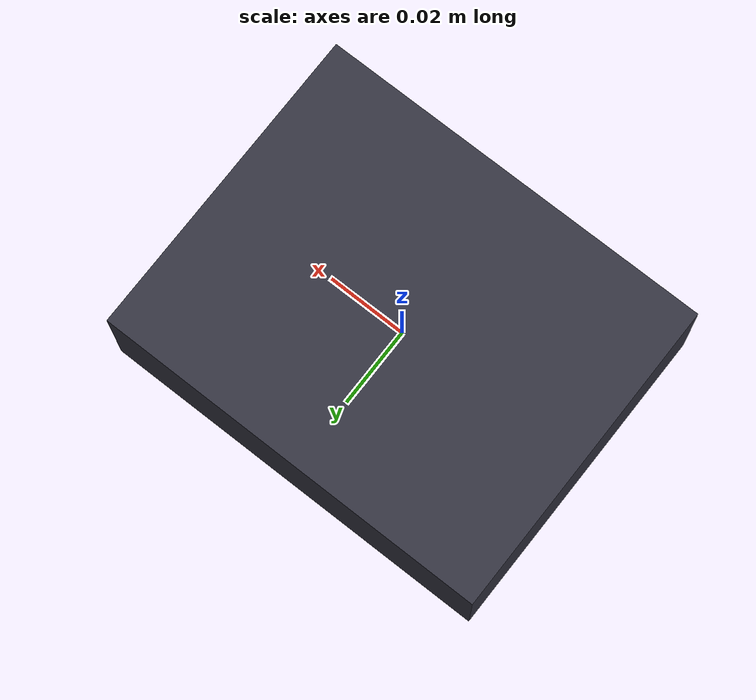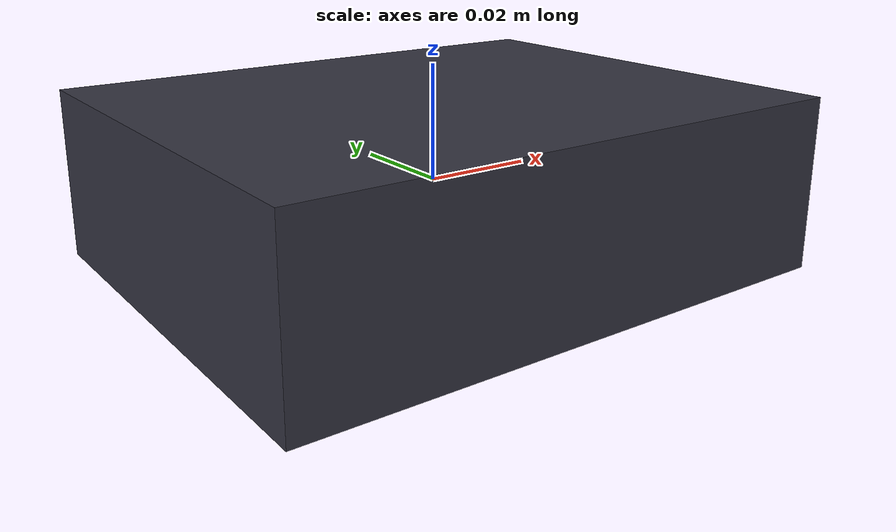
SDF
<?xml version="1.0"?>
<sdf version="1.9">
  <model name="generic_4d_radar">
    <static>false</static>
    <link name="radar_link">
      <inertial>
        <mass>0.3</mass>
        <inertia>
          <ixx>0.0003</ixx>
          <iyy>0.0003</iyy>
          <izz>0.0005</izz>
        </inertia>
      </inertial>

      <visual name="visual">
        <geometry>
          <box>
            <size>0.10 0.08 0.03</size>
          </box>
        </geometry>
        <material>
          <ambient>0.1 0.1 0.15 1.0</ambient>
          <diffuse>0.2 0.2 0.25 1.0</diffuse>
          <specular>0.4 0.4 0.4 1.0</specular>
        </material>
      </visual>

      <collision name="collision">
        <geometry>
          <box>
            <size>0.10 0.08 0.03</size>
          </box>
        </geometry>
      </collision>

      <!-- Generic 4D Radar System Plugin -->
      <plugin
        filename="libgazebo_4d_radar_plugin.so"
        name="gazebo_4d_radar_plugin::Gazebo4DRadarPlugin">
        <sensor_name>radar</sensor_name>
        <frame_id>radar_link</frame_id>
        <radar_profile>generic</radar_profile>
        <scan_topic>/radar/scan</scan_topic>
        <pointcloud_topic>/radar/points</pointcloud_topic>
        <publish_radar_scan>true</publish_radar_scan>
        <publish_pointcloud>true</publish_pointcloud>

        <!-- Carrier & Update Rate -->
        <cycle_rate_hz>20.0</cycle_rate_hz>

        <!-- FOV and Range -->
        <max_range_m>200.0</max_range_m>
        <min_range_m>0.2</min_range_m>
        <fov_azimuth_rad>2.0944</fov_azimuth_rad>   <!-- 120 deg (-60 to +60) -->
        <fov_elevation_rad>0.5236</fov_elevation_rad> <!-- 30 deg (-15 to +15) -->

        <!-- Doppler Kinematics & Folding -->
        <v_max_mps>50.0</v_max_mps>
        <enable_doppler_folding>true</enable_doppler_folding>
        <closing_velocity_positive>false</closing_velocity_positive>

        <!-- Noise Standard Deviations -->
        <range_sigma_m>0.05</range_sigma_m>
        <azimuth_sigma_rad>0.0052</azimuth_sigma_rad>
        <elevation_sigma_rad>0.0105</elevation_sigma_rad>
        <range_rate_sigma_mps>0.05</range_rate_sigma_mps>

        <!-- Reporting Resolutions -->
        <range_resolution_m>0.02</range_resolution_m>
        <azimuth_resolution_rad>0.00175</azimuth_resolution_rad>
        <elevation_resolution_rad>0.00349</elevation_resolution_rad>
        <range_rate_resolution_mps>0.01</range_rate_resolution_mps>

        <!-- Clutter & Noise Non-Idealities -->
        <false_detection_rate_per_cycle>2.0</false_detection_rate_per_cycle>
        <detection_dropout_probability>0.03</detection_dropout_probability>
        <min_rcs_threshold>-25.0</min_rcs_threshold>

        <!-- Ray Grid Density -->
        <ray_samples_azimuth>120</ray_samples_azimuth>
        <ray_samples_elevation>30</ray_samples_elevation>
      </plugin>
    </link>
  </model>
</sdf>
